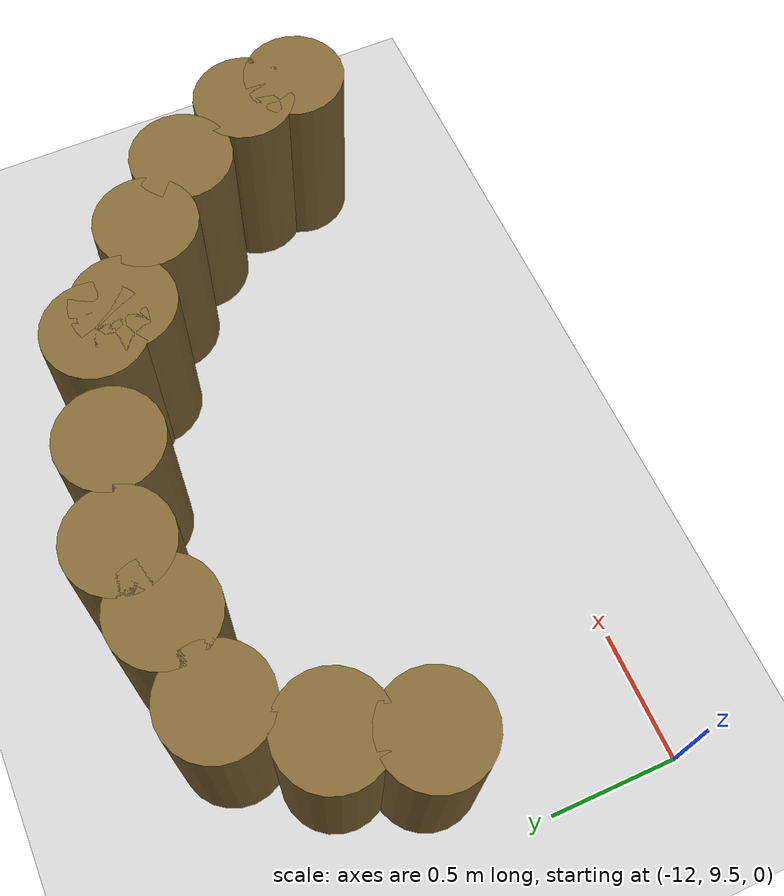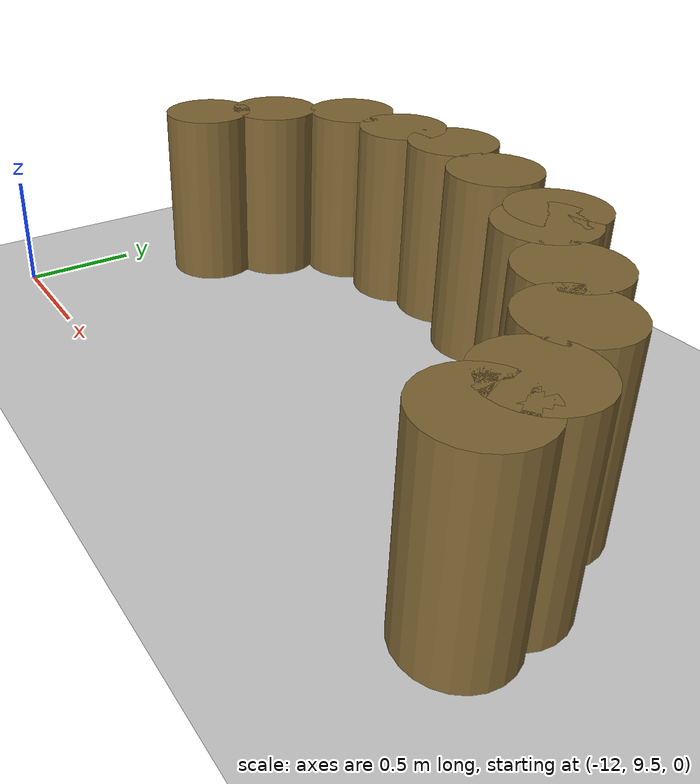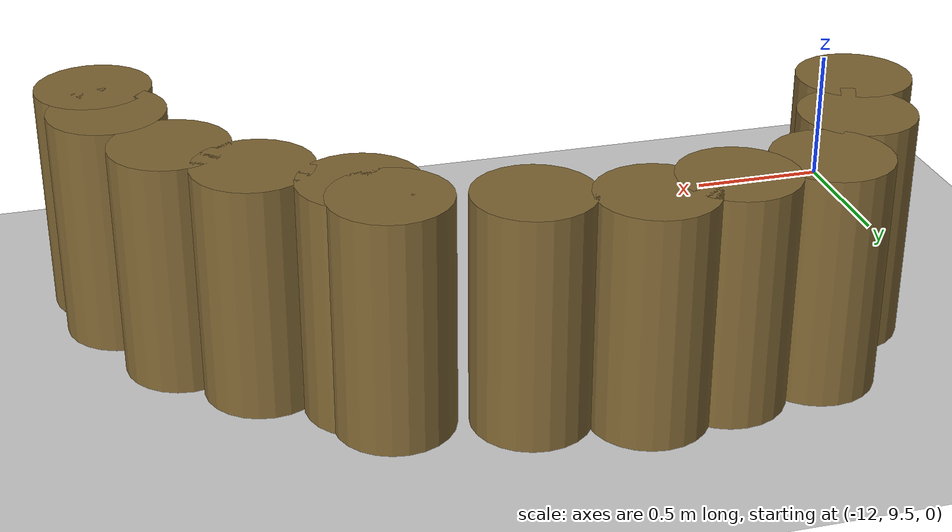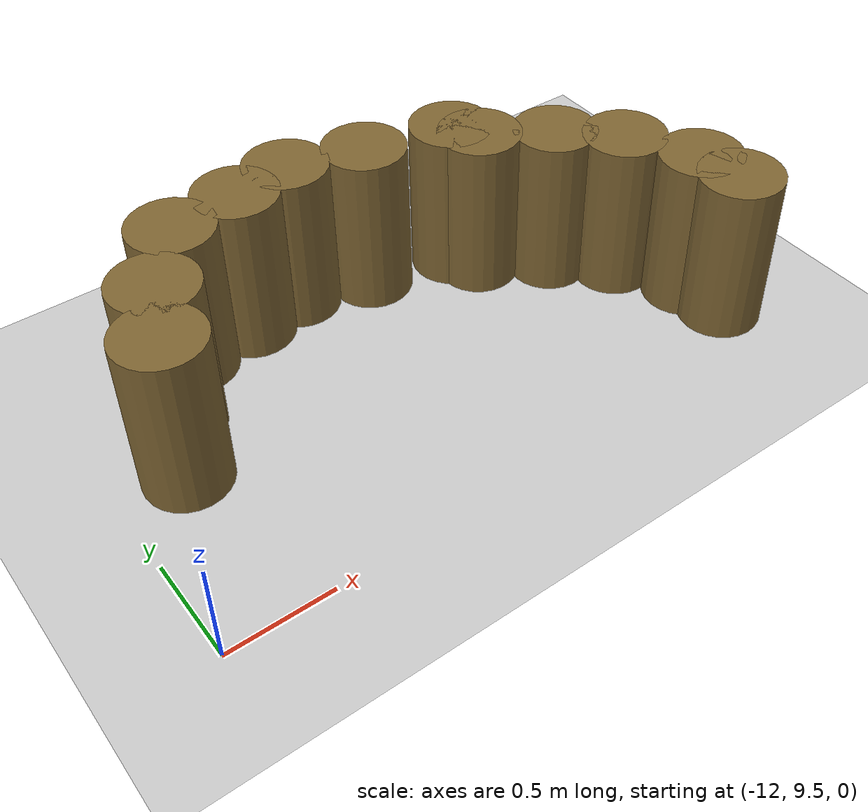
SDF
<sdf version="1.7">
 <world name="default">
  <model name="ground_plane">
   <static>1</static>
   <link name="link">
    <collision name="collision">
     <geometry><plane><normal>0 0 1</normal><size>100 100</size></plane></geometry>
     <surface><friction><ode><mu>100</mu><mu2>50</mu2></ode></friction></surface>
    </collision>
    <visual name="visual">
     <cast_shadows>0</cast_shadows>
     <geometry><plane><normal>0 0 1</normal><size>100 100</size></plane></geometry>
     <material>
      <script><uri>file://media/materials/scripts/gazebo.material</uri><name>Gazebo/Grey</name></script>
     </material>
    </visual>
   </link>
  </model>
  <model name="mini_cylinder_0_clone_0_clone_clone_clone_clone_3_clone_20_clone_67">
   <link name="link">
    <inertial>
     <mass>1</mass>
     <inertia><ixx>0.145833</ixx><ixy>0</ixy><ixz>0</ixz><iyy>0.145833</iyy><iyz>0</iyz><izz>0.125</izz></inertia>
    </inertial>
    <visual name="visual">
     <geometry><cylinder><radius>0.2</radius><length>0.8</length></cylinder></geometry>
     <material>
      <script><name>Gazebo/Grey</name><uri>file://media/materials/scripts/gazebo.material</uri></script>
      <shader type="vertex"><normal_map>__default__</normal_map></shader>
      <ambient>0.5 0.4 0.2 1</ambient>
      <diffuse>0.7 0.7 0.7 1</diffuse>
      <specular>0.01 0.01 0.01 1</specular>
      <emissive>0 0 0 1</emissive>
     </material>
    </visual>
    <collision name="collision">
     <geometry><cylinder><radius>0.2</radius><length>0.8</length></cylinder></geometry>
     <surface>
      <friction>
       <ode><mu>1</mu><mu2>1</mu2><fdir1>0 0 0</fdir1><slip1>0</slip1><slip2>0</slip2></ode>
       <torsional>
        <coefficient>1</coefficient>
        <patch_radius>0</patch_radius>
        <surface_radius>0</surface_radius>
        <use_patch_radius>1</use_patch_radius>
        <ode><slip>0</slip></ode>
       </torsional>
      </friction>
      <bounce><restitution_coefficient>0</restitution_coefficient><threshold>1e+06</threshold></bounce>
      <contact>
       <collide_without_contact>0</collide_without_contact>
       <collide_without_contact_bitmask>1</collide_without_contact_bitmask>
       <collide_bitmask>1</collide_bitmask>
       <ode>
        <soft_cfm>0</soft_cfm>
        <soft_erp>0.2</soft_erp>
        <kp>1e+13</kp>
        <kd>1</kd>
        <max_vel>0.01</max_vel>
        <min_depth>0</min_depth>
       </ode>
       <bullet>
        <split_impulse>1</split_impulse>
        <split_impulse_penetration_threshold>-0.01</split_impulse_penetration_threshold>
        <soft_cfm>0</soft_cfm>
        <soft_erp>0.2</soft_erp>
        <kp>1e+13</kp>
        <kd>1</kd>
       </bullet>
      </contact>
     </surface>
    </collision>
   </link>
   <static>1</static>
   <pose>-9.17055 10.0028 0.4 0 -0 0</pose>
  </model>
  <model name="mini_cylinder_0_clone_0_clone_clone_clone_clone_3_clone_20_clone_68">
   <link name="link">
    <inertial>
     <mass>1</mass>
     <inertia><ixx>0.145833</ixx><ixy>0</ixy><ixz>0</ixz><iyy>0.145833</iyy><iyz>0</iyz><izz>0.125</izz></inertia>
    </inertial>
    <visual name="visual">
     <geometry><cylinder><radius>0.2</radius><length>0.8</length></cylinder></geometry>
     <material>
      <script><name>Gazebo/Grey</name><uri>file://media/materials/scripts/gazebo.material</uri></script>
      <shader type="vertex"><normal_map>__default__</normal_map></shader>
      <ambient>0.5 0.4 0.2 1</ambient>
      <diffuse>0.7 0.7 0.7 1</diffuse>
      <specular>0.01 0.01 0.01 1</specular>
      <emissive>0 0 0 1</emissive>
     </material>
    </visual>
    <collision name="collision">
     <geometry><cylinder><radius>0.2</radius><length>0.8</length></cylinder></geometry>
     <surface>
      <friction>
       <ode><mu>1</mu><mu2>1</mu2><fdir1>0 0 0</fdir1><slip1>0</slip1><slip2>0</slip2></ode>
       <torsional>
        <coefficient>1</coefficient>
        <patch_radius>0</patch_radius>
        <surface_radius>0</surface_radius>
        <use_patch_radius>1</use_patch_radius>
        <ode><slip>0</slip></ode>
       </torsional>
      </friction>
      <bounce><restitution_coefficient>0</restitution_coefficient><threshold>1e+06</threshold></bounce>
      <contact>
       <collide_without_contact>0</collide_without_contact>
       <collide_without_contact_bitmask>1</collide_without_contact_bitmask>
       <collide_bitmask>1</collide_bitmask>
       <ode>
        <soft_cfm>0</soft_cfm>
        <soft_erp>0.2</soft_erp>
        <kp>1e+13</kp>
        <kd>1</kd>
        <max_vel>0.01</max_vel>
        <min_depth>0</min_depth>
       </ode>
       <bullet>
        <split_impulse>1</split_impulse>
        <split_impulse_penetration_threshold>-0.01</split_impulse_penetration_threshold>
        <soft_cfm>0</soft_cfm>
        <soft_erp>0.2</soft_erp>
        <kp>1e+13</kp>
        <kd>1</kd>
       </bullet>
      </contact>
     </surface>
    </collision>
   </link>
   <static>1</static>
   <pose>-9.33863 10.3265 0.4 0 -0 0</pose>
  </model>
  <model name="mini_cylinder_0_clone_0_clone_clone_clone_clone_3_clone_20_clone_69">
   <link name="link">
    <inertial>
     <mass>1</mass>
     <inertia><ixx>0.145833</ixx><ixy>0</ixy><ixz>0</ixz><iyy>0.145833</iyy><iyz>0</iyz><izz>0.125</izz></inertia>
    </inertial>
    <visual name="visual">
     <geometry><cylinder><radius>0.2</radius><length>0.8</length></cylinder></geometry>
     <material>
      <script><name>Gazebo/Grey</name><uri>file://media/materials/scripts/gazebo.material</uri></script>
      <shader type="vertex"><normal_map>__default__</normal_map></shader>
      <ambient>0.5 0.4 0.2 1</ambient>
      <diffuse>0.7 0.7 0.7 1</diffuse>
      <specular>0.01 0.01 0.01 1</specular>
      <emissive>0 0 0 1</emissive>
     </material>
    </visual>
    <collision name="collision">
     <geometry><cylinder><radius>0.2</radius><length>0.8</length></cylinder></geometry>
     <surface>
      <friction>
       <ode><mu>1</mu><mu2>1</mu2><fdir1>0 0 0</fdir1><slip1>0</slip1><slip2>0</slip2></ode>
       <torsional>
        <coefficient>1</coefficient>
        <patch_radius>0</patch_radius>
        <surface_radius>0</surface_radius>
        <use_patch_radius>1</use_patch_radius>
        <ode><slip>0</slip></ode>
       </torsional>
      </friction>
      <bounce><restitution_coefficient>0</restitution_coefficient><threshold>1e+06</threshold></bounce>
      <contact>
       <collide_without_contact>0</collide_without_contact>
       <collide_without_contact_bitmask>1</collide_without_contact_bitmask>
       <collide_bitmask>1</collide_bitmask>
       <ode>
        <soft_cfm>0</soft_cfm>
        <soft_erp>0.2</soft_erp>
        <kp>1e+13</kp>
        <kd>1</kd>
        <max_vel>0.01</max_vel>
        <min_depth>0</min_depth>
       </ode>
       <bullet>
        <split_impulse>1</split_impulse>
        <split_impulse_penetration_threshold>-0.01</split_impulse_penetration_threshold>
        <soft_cfm>0</soft_cfm>
        <soft_erp>0.2</soft_erp>
        <kp>1e+13</kp>
        <kd>1</kd>
       </bullet>
      </contact>
     </surface>
    </collision>
   </link>
   <static>1</static>
   <pose>-9.57017 10.5508 0.4 0 -0 0</pose>
  </model>
  <model name="mini_cylinder_0_clone_0_clone_clone_clone_clone_3_clone_20_clone_70">
   <link name="link">
    <inertial>
     <mass>1</mass>
     <inertia><ixx>0.145833</ixx><ixy>0</ixy><ixz>0</ixz><iyy>0.145833</iyy><iyz>0</iyz><izz>0.125</izz></inertia>
    </inertial>
    <visual name="visual">
     <geometry><cylinder><radius>0.2</radius><length>0.8</length></cylinder></geometry>
     <material>
      <script><name>Gazebo/Grey</name><uri>file://media/materials/scripts/gazebo.material</uri></script>
      <shader type="vertex"><normal_map>__default__</normal_map></shader>
      <ambient>0.5 0.4 0.2 1</ambient>
      <diffuse>0.7 0.7 0.7 1</diffuse>
      <specular>0.01 0.01 0.01 1</specular>
      <emissive>0 0 0 1</emissive>
     </material>
    </visual>
    <collision name="collision">
     <geometry><cylinder><radius>0.2</radius><length>0.8</length></cylinder></geometry>
     <surface>
      <friction>
       <ode><mu>1</mu><mu2>1</mu2><fdir1>0 0 0</fdir1><slip1>0</slip1><slip2>0</slip2></ode>
       <torsional>
        <coefficient>1</coefficient>
        <patch_radius>0</patch_radius>
        <surface_radius>0</surface_radius>
        <use_patch_radius>1</use_patch_radius>
        <ode><slip>0</slip></ode>
       </torsional>
      </friction>
      <bounce><restitution_coefficient>0</restitution_coefficient><threshold>1e+06</threshold></bounce>
      <contact>
       <collide_without_contact>0</collide_without_contact>
       <collide_without_contact_bitmask>1</collide_without_contact_bitmask>
       <collide_bitmask>1</collide_bitmask>
       <ode>
        <soft_cfm>0</soft_cfm>
        <soft_erp>0.2</soft_erp>
        <kp>1e+13</kp>
        <kd>1</kd>
        <max_vel>0.01</max_vel>
        <min_depth>0</min_depth>
       </ode>
       <bullet>
        <split_impulse>1</split_impulse>
        <split_impulse_penetration_threshold>-0.01</split_impulse_penetration_threshold>
        <soft_cfm>0</soft_cfm>
        <soft_erp>0.2</soft_erp>
        <kp>1e+13</kp>
        <kd>1</kd>
       </bullet>
      </contact>
     </surface>
    </collision>
   </link>
   <static>1</static>
   <pose>-9.93318 10.8706 0.4 0 -0 0</pose>
  </model>
  <model name="mini_cylinder_0_clone_0_clone_clone_clone_clone_3_clone_20_clone_71">
   <link name="link">
    <inertial>
     <mass>1</mass>
     <inertia><ixx>0.145833</ixx><ixy>0</ixy><ixz>0</ixz><iyy>0.145833</iyy><iyz>0</iyz><izz>0.125</izz></inertia>
    </inertial>
    <visual name="visual">
     <geometry><cylinder><radius>0.2</radius><length>0.8</length></cylinder></geometry>
     <material>
      <script><name>Gazebo/Grey</name><uri>file://media/materials/scripts/gazebo.material</uri></script>
      <shader type="vertex"><normal_map>__default__</normal_map></shader>
      <ambient>0.5 0.4 0.2 1</ambient>
      <diffuse>0.7 0.7 0.7 1</diffuse>
      <specular>0.01 0.01 0.01 1</specular>
      <emissive>0 0 0 1</emissive>
     </material>
    </visual>
    <collision name="collision">
     <geometry><cylinder><radius>0.2</radius><length>0.8</length></cylinder></geometry>
     <surface>
      <friction>
       <ode><mu>1</mu><mu2>1</mu2><fdir1>0 0 0</fdir1><slip1>0</slip1><slip2>0</slip2></ode>
       <torsional>
        <coefficient>1</coefficient>
        <patch_radius>0</patch_radius>
        <surface_radius>0</surface_radius>
        <use_patch_radius>1</use_patch_radius>
        <ode><slip>0</slip></ode>
       </torsional>
      </friction>
      <bounce><restitution_coefficient>0</restitution_coefficient><threshold>1e+06</threshold></bounce>
      <contact>
       <collide_without_contact>0</collide_without_contact>
       <collide_without_contact_bitmask>1</collide_without_contact_bitmask>
       <collide_bitmask>1</collide_bitmask>
       <ode>
        <soft_cfm>0</soft_cfm>
        <soft_erp>0.2</soft_erp>
        <kp>1e+13</kp>
        <kd>1</kd>
        <max_vel>0.01</max_vel>
        <min_depth>0</min_depth>
       </ode>
       <bullet>
        <split_impulse>1</split_impulse>
        <split_impulse_penetration_threshold>-0.01</split_impulse_penetration_threshold>
        <soft_cfm>0</soft_cfm>
        <soft_erp>0.2</soft_erp>
        <kp>1e+13</kp>
        <kd>1</kd>
       </bullet>
      </contact>
     </surface>
    </collision>
   </link>
   <static>1</static>
   <pose>-9.86597 10.7414 0.4 0 -0 0</pose>
  </model>
  <model name="mini_cylinder_0_clone_0_clone_clone_clone_clone_3_clone_20_clone_72">
   <link name="link">
    <inertial>
     <mass>1</mass>
     <inertia><ixx>0.145833</ixx><ixy>0</ixy><ixz>0</ixz><iyy>0.145833</iyy><iyz>0</iyz><izz>0.125</izz></inertia>
    </inertial>
    <visual name="visual">
     <geometry><cylinder><radius>0.2</radius><length>0.8</length></cylinder></geometry>
     <material>
      <script><name>Gazebo/Grey</name><uri>file://media/materials/scripts/gazebo.material</uri></script>
      <shader type="vertex"><normal_map>__default__</normal_map></shader>
      <ambient>0.5 0.4 0.2 1</ambient>
      <diffuse>0.7 0.7 0.7 1</diffuse>
      <specular>0.01 0.01 0.01 1</specular>
      <emissive>0 0 0 1</emissive>
     </material>
    </visual>
    <collision name="collision">
     <geometry><cylinder><radius>0.2</radius><length>0.8</length></cylinder></geometry>
     <surface>
      <friction>
       <ode><mu>1</mu><mu2>1</mu2><fdir1>0 0 0</fdir1><slip1>0</slip1><slip2>0</slip2></ode>
       <torsional>
        <coefficient>1</coefficient>
        <patch_radius>0</patch_radius>
        <surface_radius>0</surface_radius>
        <use_patch_radius>1</use_patch_radius>
        <ode><slip>0</slip></ode>
       </torsional>
      </friction>
      <bounce><restitution_coefficient>0</restitution_coefficient><threshold>1e+06</threshold></bounce>
      <contact>
       <collide_without_contact>0</collide_without_contact>
       <collide_without_contact_bitmask>1</collide_without_contact_bitmask>
       <collide_bitmask>1</collide_bitmask>
       <ode>
        <soft_cfm>0</soft_cfm>
        <soft_erp>0.2</soft_erp>
        <kp>1e+13</kp>
        <kd>1</kd>
        <max_vel>0.01</max_vel>
        <min_depth>0</min_depth>
       </ode>
       <bullet>
        <split_impulse>1</split_impulse>
        <split_impulse_penetration_threshold>-0.01</split_impulse_penetration_threshold>
        <soft_cfm>0</soft_cfm>
        <soft_erp>0.2</soft_erp>
        <kp>1e+13</kp>
        <kd>1</kd>
       </bullet>
      </contact>
     </surface>
    </collision>
   </link>
   <static>1</static>
   <pose>-10.3575 10.9616 0.4 0 -0 0</pose>
  </model>
  <model name="mini_cylinder_0_clone_0_clone_clone_clone_clone_3_clone_20_clone_73">
   <link name="link">
    <inertial>
     <mass>1</mass>
     <inertia><ixx>0.145833</ixx><ixy>0</ixy><ixz>0</ixz><iyy>0.145833</iyy><iyz>0</iyz><izz>0.125</izz></inertia>
    </inertial>
    <visual name="visual">
     <geometry><cylinder><radius>0.2</radius><length>0.8</length></cylinder></geometry>
     <material>
      <script><name>Gazebo/Grey</name><uri>file://media/materials/scripts/gazebo.material</uri></script>
      <shader type="vertex"><normal_map>__default__</normal_map></shader>
      <ambient>0.5 0.4 0.2 1</ambient>
      <diffuse>0.7 0.7 0.7 1</diffuse>
      <specular>0.01 0.01 0.01 1</specular>
      <emissive>0 0 0 1</emissive>
     </material>
    </visual>
    <collision name="collision">
     <geometry><cylinder><radius>0.2</radius><length>0.8</length></cylinder></geometry>
     <surface>
      <friction>
       <ode><mu>1</mu><mu2>1</mu2><fdir1>0 0 0</fdir1><slip1>0</slip1><slip2>0</slip2></ode>
       <torsional>
        <coefficient>1</coefficient>
        <patch_radius>0</patch_radius>
        <surface_radius>0</surface_radius>
        <use_patch_radius>1</use_patch_radius>
        <ode><slip>0</slip></ode>
       </torsional>
      </friction>
      <bounce><restitution_coefficient>0</restitution_coefficient><threshold>1e+06</threshold></bounce>
      <contact>
       <collide_without_contact>0</collide_without_contact>
       <collide_without_contact_bitmask>1</collide_without_contact_bitmask>
       <collide_bitmask>1</collide_bitmask>
       <ode>
        <soft_cfm>0</soft_cfm>
        <soft_erp>0.2</soft_erp>
        <kp>1e+13</kp>
        <kd>1</kd>
        <max_vel>0.01</max_vel>
        <min_depth>0</min_depth>
       </ode>
       <bullet>
        <split_impulse>1</split_impulse>
        <split_impulse_penetration_threshold>-0.01</split_impulse_penetration_threshold>
        <soft_cfm>0</soft_cfm>
        <soft_erp>0.2</soft_erp>
        <kp>1e+13</kp>
        <kd>1</kd>
       </bullet>
      </contact>
     </surface>
    </collision>
   </link>
   <static>1</static>
   <pose>-10.7169 11.0528 0.4 0 -0 0</pose>
  </model>
  <model name="mini_cylinder_0_clone_0_clone_clone_clone_clone_3_clone_20_clone_74">
   <link name="link">
    <inertial>
     <mass>1</mass>
     <inertia><ixx>0.145833</ixx><ixy>0</ixy><ixz>0</ixz><iyy>0.145833</iyy><iyz>0</iyz><izz>0.125</izz></inertia>
    </inertial>
    <visual name="visual">
     <geometry><cylinder><radius>0.2</radius><length>0.8</length></cylinder></geometry>
     <material>
      <script><name>Gazebo/Grey</name><uri>file://media/materials/scripts/gazebo.material</uri></script>
      <shader type="vertex"><normal_map>__default__</normal_map></shader>
      <ambient>0.5 0.4 0.2 1</ambient>
      <diffuse>0.7 0.7 0.7 1</diffuse>
      <specular>0.01 0.01 0.01 1</specular>
      <emissive>0 0 0 1</emissive>
     </material>
    </visual>
    <collision name="collision">
     <geometry><cylinder><radius>0.2</radius><length>0.8</length></cylinder></geometry>
     <surface>
      <friction>
       <ode><mu>1</mu><mu2>1</mu2><fdir1>0 0 0</fdir1><slip1>0</slip1><slip2>0</slip2></ode>
       <torsional>
        <coefficient>1</coefficient>
        <patch_radius>0</patch_radius>
        <surface_radius>0</surface_radius>
        <use_patch_radius>1</use_patch_radius>
        <ode><slip>0</slip></ode>
       </torsional>
      </friction>
      <bounce><restitution_coefficient>0</restitution_coefficient><threshold>1e+06</threshold></bounce>
      <contact>
       <collide_without_contact>0</collide_without_contact>
       <collide_without_contact_bitmask>1</collide_without_contact_bitmask>
       <collide_bitmask>1</collide_bitmask>
       <ode>
        <soft_cfm>0</soft_cfm>
        <soft_erp>0.2</soft_erp>
        <kp>1e+13</kp>
        <kd>1</kd>
        <max_vel>0.01</max_vel>
        <min_depth>0</min_depth>
       </ode>
       <bullet>
        <split_impulse>1</split_impulse>
        <split_impulse_penetration_threshold>-0.01</split_impulse_penetration_threshold>
        <soft_cfm>0</soft_cfm>
        <soft_erp>0.2</soft_erp>
        <kp>1e+13</kp>
        <kd>1</kd>
       </bullet>
      </contact>
     </surface>
    </collision>
   </link>
   <static>1</static>
   <pose>-11 11 0.4 0 -0 0</pose>
  </model>
  <model name="mini_cylinder_0_clone_0_clone_clone_clone_clone_3_clone_20_clone_75">
   <link name="link">
    <inertial>
     <mass>1</mass>
     <inertia><ixx>0.145833</ixx><ixy>0</ixy><ixz>0</ixz><iyy>0.145833</iyy><iyz>0</iyz><izz>0.125</izz></inertia>
    </inertial>
    <visual name="visual">
     <geometry><cylinder><radius>0.2</radius><length>0.8</length></cylinder></geometry>
     <material>
      <script><name>Gazebo/Grey</name><uri>file://media/materials/scripts/gazebo.material</uri></script>
      <shader type="vertex"><normal_map>__default__</normal_map></shader>
      <ambient>0.5 0.4 0.2 1</ambient>
      <diffuse>0.7 0.7 0.7 1</diffuse>
      <specular>0.01 0.01 0.01 1</specular>
      <emissive>0 0 0 1</emissive>
     </material>
    </visual>
    <collision name="collision">
     <geometry><cylinder><radius>0.2</radius><length>0.8</length></cylinder></geometry>
     <surface>
      <friction>
       <ode><mu>1</mu><mu2>1</mu2><fdir1>0 0 0</fdir1><slip1>0</slip1><slip2>0</slip2></ode>
       <torsional>
        <coefficient>1</coefficient>
        <patch_radius>0</patch_radius>
        <surface_radius>0</surface_radius>
        <use_patch_radius>1</use_patch_radius>
        <ode><slip>0</slip></ode>
       </torsional>
      </friction>
      <bounce><restitution_coefficient>0</restitution_coefficient><threshold>1e+06</threshold></bounce>
      <contact>
       <collide_without_contact>0</collide_without_contact>
       <collide_without_contact_bitmask>1</collide_without_contact_bitmask>
       <collide_bitmask>1</collide_bitmask>
       <ode>
        <soft_cfm>0</soft_cfm>
        <soft_erp>0.2</soft_erp>
        <kp>1e+13</kp>
        <kd>1</kd>
        <max_vel>0.01</max_vel>
        <min_depth>0</min_depth>
       </ode>
       <bullet>
        <split_impulse>1</split_impulse>
        <split_impulse_penetration_threshold>-0.01</split_impulse_penetration_threshold>
        <soft_cfm>0</soft_cfm>
        <soft_erp>0.2</soft_erp>
        <kp>1e+13</kp>
        <kd>1</kd>
       </bullet>
      </contact>
     </surface>
    </collision>
   </link>
   <static>1</static>
   <pose>-11.3343 10.9508 0.4 0 -0 0</pose>
  </model>
  <model name="mini_cylinder_0_clone_0_clone_clone_clone_clone_3_clone_20_clone_76">
   <link name="link">
    <inertial>
     <mass>1</mass>
     <inertia><ixx>0.145833</ixx><ixy>0</ixy><ixz>0</ixz><iyy>0.145833</iyy><iyz>0</iyz><izz>0.125</izz></inertia>
    </inertial>
    <visual name="visual">
     <geometry><cylinder><radius>0.2</radius><length>0.8</length></cylinder></geometry>
     <material>
      <script><name>Gazebo/Grey</name><uri>file://media/materials/scripts/gazebo.material</uri></script>
      <shader type="vertex"><normal_map>__default__</normal_map></shader>
      <ambient>0.5 0.4 0.2 1</ambient>
      <diffuse>0.7 0.7 0.7 1</diffuse>
      <specular>0.01 0.01 0.01 1</specular>
      <emissive>0 0 0 1</emissive>
     </material>
    </visual>
    <collision name="collision">
     <geometry><cylinder><radius>0.2</radius><length>0.8</length></cylinder></geometry>
     <surface>
      <friction>
       <ode><mu>1</mu><mu2>1</mu2><fdir1>0 0 0</fdir1><slip1>0</slip1><slip2>0</slip2></ode>
       <torsional>
        <coefficient>1</coefficient>
        <patch_radius>0</patch_radius>
        <surface_radius>0</surface_radius>
        <use_patch_radius>1</use_patch_radius>
        <ode><slip>0</slip></ode>
       </torsional>
      </friction>
      <bounce><restitution_coefficient>0</restitution_coefficient><threshold>1e+06</threshold></bounce>
      <contact>
       <collide_without_contact>0</collide_without_contact>
       <collide_without_contact_bitmask>1</collide_without_contact_bitmask>
       <collide_bitmask>1</collide_bitmask>
       <ode>
        <soft_cfm>0</soft_cfm>
        <soft_erp>0.2</soft_erp>
        <kp>1e+13</kp>
        <kd>1</kd>
        <max_vel>0.01</max_vel>
        <min_depth>0</min_depth>
       </ode>
       <bullet>
        <split_impulse>1</split_impulse>
        <split_impulse_penetration_threshold>-0.01</split_impulse_penetration_threshold>
        <soft_cfm>0</soft_cfm>
        <soft_erp>0.2</soft_erp>
        <kp>1e+13</kp>
        <kd>1</kd>
       </bullet>
      </contact>
     </surface>
    </collision>
   </link>
   <static>1</static>
   <pose>-11.5616 10.6531 0.4 0 -0 0</pose>
  </model>
  <model name="mini_cylinder_0_clone_0_clone_clone_clone_clone_3_clone_20_clone_77">
   <link name="link">
    <inertial>
     <mass>1</mass>
     <inertia><ixx>0.145833</ixx><ixy>0</ixy><ixz>0</ixz><iyy>0.145833</iyy><iyz>0</iyz><izz>0.125</izz></inertia>
    </inertial>
    <visual name="visual">
     <geometry><cylinder><radius>0.2</radius><length>0.8</length></cylinder></geometry>
     <material>
      <script><name>Gazebo/Grey</name><uri>file://media/materials/scripts/gazebo.material</uri></script>
      <shader type="vertex"><normal_map>__default__</normal_map></shader>
      <ambient>0.5 0.4 0.2 1</ambient>
      <diffuse>0.7 0.7 0.7 1</diffuse>
      <specular>0.01 0.01 0.01 1</specular>
      <emissive>0 0 0 1</emissive>
     </material>
    </visual>
    <collision name="collision">
     <geometry><cylinder><radius>0.2</radius><length>0.8</length></cylinder></geometry>
     <surface>
      <friction>
       <ode><mu>1</mu><mu2>1</mu2><fdir1>0 0 0</fdir1><slip1>0</slip1><slip2>0</slip2></ode>
       <torsional>
        <coefficient>1</coefficient>
        <patch_radius>0</patch_radius>
        <surface_radius>0</surface_radius>
        <use_patch_radius>1</use_patch_radius>
        <ode><slip>0</slip></ode>
       </torsional>
      </friction>
      <bounce><restitution_coefficient>0</restitution_coefficient><threshold>1e+06</threshold></bounce>
      <contact>
       <collide_without_contact>0</collide_without_contact>
       <collide_without_contact_bitmask>1</collide_without_contact_bitmask>
       <collide_bitmask>1</collide_bitmask>
       <ode>
        <soft_cfm>0</soft_cfm>
        <soft_erp>0.2</soft_erp>
        <kp>1e+13</kp>
        <kd>1</kd>
        <max_vel>0.01</max_vel>
        <min_depth>0</min_depth>
       </ode>
       <bullet>
        <split_impulse>1</split_impulse>
        <split_impulse_penetration_threshold>-0.01</split_impulse_penetration_threshold>
        <soft_cfm>0</soft_cfm>
        <soft_erp>0.2</soft_erp>
        <kp>1e+13</kp>
        <kd>1</kd>
       </bullet>
      </contact>
     </surface>
    </collision>
   </link>
   <static>1</static>
   <pose>-11.6871 10.3583 0.4 0 -0 0</pose>
  </model>
  <model name="mini_cylinder_0_clone_0_clone_clone_clone_clone_3_clone_20_clone_97">
   <link name="link">
    <inertial>
     <mass>1</mass>
     <inertia><ixx>0.145833</ixx><ixy>0</ixy><ixz>0</ixz><iyy>0.145833</iyy><iyz>0</iyz><izz>0.125</izz></inertia>
    </inertial>
    <visual name="visual">
     <geometry><cylinder><radius>0.2</radius><length>0.8</length></cylinder></geometry>
     <material>
      <script><name>Gazebo/Grey</name><uri>file://media/materials/scripts/gazebo.material</uri></script>
      <shader type="vertex"><normal_map>__default__</normal_map></shader>
      <ambient>0.5 0.4 0.2 1</ambient>
      <diffuse>0.7 0.7 0.7 1</diffuse>
      <specular>0.01 0.01 0.01 1</specular>
      <emissive>0 0 0 1</emissive>
     </material>
    </visual>
    <collision name="collision">
     <geometry><cylinder><radius>0.2</radius><length>0.8</length></cylinder></geometry>
     <surface>
      <friction>
       <ode><mu>1</mu><mu2>1</mu2><fdir1>0 0 0</fdir1><slip1>0</slip1><slip2>0</slip2></ode>
       <torsional>
        <coefficient>1</coefficient>
        <patch_radius>0</patch_radius>
        <surface_radius>0</surface_radius>
        <use_patch_radius>1</use_patch_radius>
        <ode><slip>0</slip></ode>
       </torsional>
      </friction>
      <bounce><restitution_coefficient>0</restitution_coefficient><threshold>1e+06</threshold></bounce>
      <contact>
       <collide_without_contact>0</collide_without_contact>
       <collide_without_contact_bitmask>1</collide_without_contact_bitmask>
       <collide_bitmask>1</collide_bitmask>
       <ode>
        <soft_cfm>0</soft_cfm>
        <soft_erp>0.2</soft_erp>
        <kp>1e+13</kp>
        <kd>1</kd>
        <max_vel>0.01</max_vel>
        <min_depth>0</min_depth>
       </ode>
       <bullet>
        <split_impulse>1</split_impulse>
        <split_impulse_penetration_threshold>-0.01</split_impulse_penetration_threshold>
        <soft_cfm>0</soft_cfm>
        <soft_erp>0.2</soft_erp>
        <kp>1e+13</kp>
        <kd>1</kd>
       </bullet>
      </contact>
     </surface>
    </collision>
   </link>
   <static>1</static>
   <pose>-9.1451 9.78077 0.4 0 -0 0</pose>
  </model>
 </world>
</sdf>
